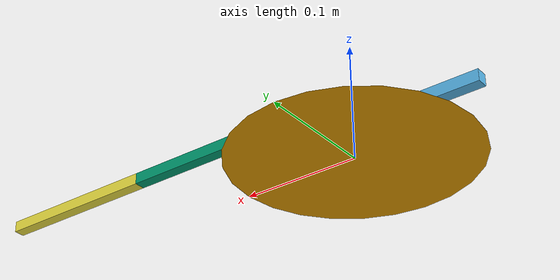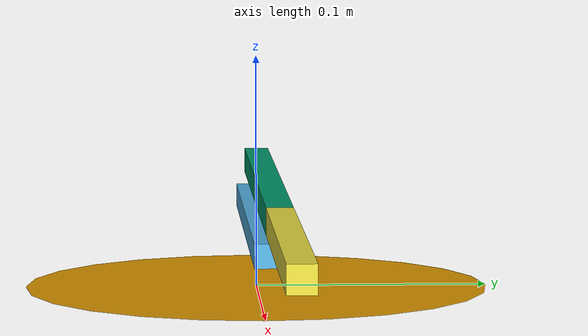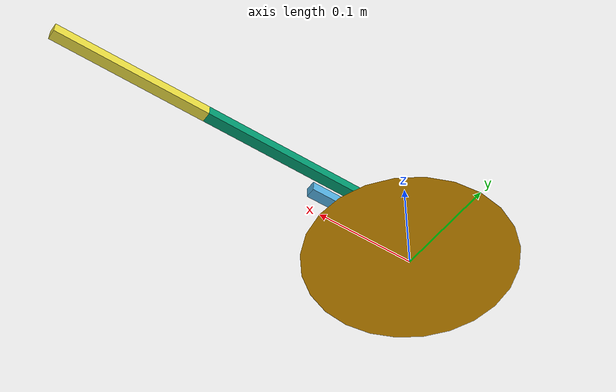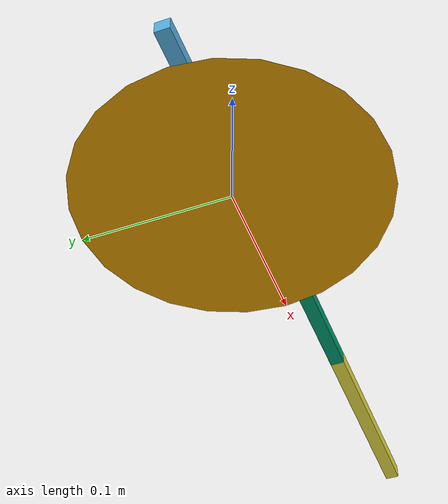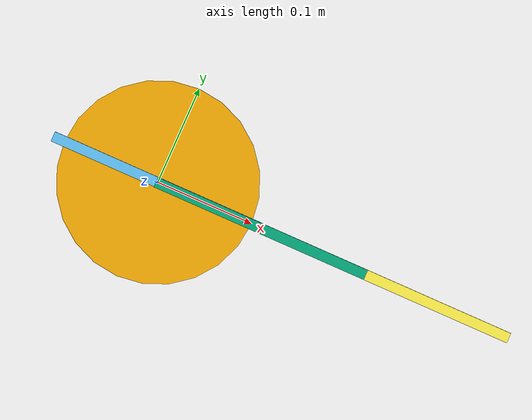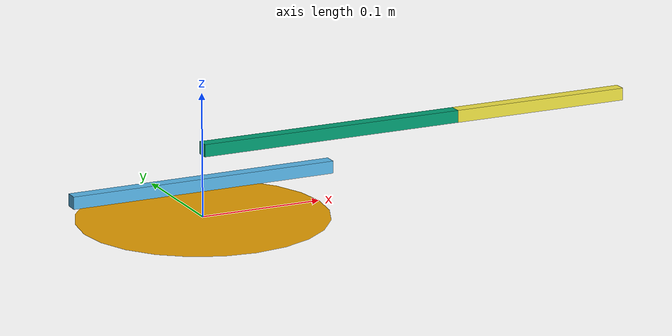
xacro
<?xml version="1.0"?>
<robot xmlns:xacro="http://www.ros.org/wiki/xacro" name="CrustCrawler">
  <xacro:property name="pi" value="3.1415" />
  <xacro:property name="LinkWidth" value="0.01" />
  <xacro:property name="L1" value="0.055" />
  <xacro:property name="L2" value="0.22" />
  <xacro:property name="Lcp" value="0.15" />
  <link name="base_link">
    <visual>
      <geometry>
        <cylinder length="0" radius="0.1"/>
      </geometry>
      <origin rpy="0 0 0" xyz="0 0 0"/>
    </visual>
  </link>

  <link name="link1">
    <visual>
      <geometry>
        <box size="${L2} ${LinkWidth} ${LinkWidth}"/>
      </geometry>
      <origin rpy="0 0 0" xyz="0 0 ${-L1+L1/2}"/>
    </visual>
  </link>

  <link name="link2">
    <visual>
      <geometry>
        <box size="${L2} ${LinkWidth} ${LinkWidth}"/>
      </geometry>
      <origin rpy="0 0 0" xyz="${L2/2} 0 0"/>
    </visual>
  </link>

  <link name="link3">
    <visual>
      <geometry>
        <box size="${Lcp} ${LinkWidth} ${LinkWidth}"/>
      </geometry>
      <origin rpy="0 0 0" xyz="${Lcp/2} 0 0"/>
    </visual>
  </link>

  <joint name="FirstJoint" type="revolute">
    <axis xyz="0 0 1"/>
    <limit effort="1000.0" lower="0.0" upper="${pi*2}" velocity="0.5"/>
    <parent link="base_link"/>
    <child link="link1"/>
    <origin xyz="0 0 ${L1}"/>
  </joint>

  <joint name="SecondJoint" type="revolute">
    <axis xyz="0 0 1"/>
    <limit effort="1000.0" lower="-0.3" upper="${pi}" velocity="0.5"/>
    <parent link="link1"/>
    <child link="link2"/>
    <origin xyz="0 0 0" rpy="${pi/2} 0 0"/>
  </joint>

  <joint name="ThirdJoint" type="revolute">
    <axis xyz="0 0 1"/>
    <limit effort="1000.0" lower="2.8" upper="-3" velocity="0.5"/>
    <parent link="link2"/>
    <child link="link3"/>
    <origin xyz="${L2} 0 0" rpy="0 0 0"/>
  </joint>

</robot>
